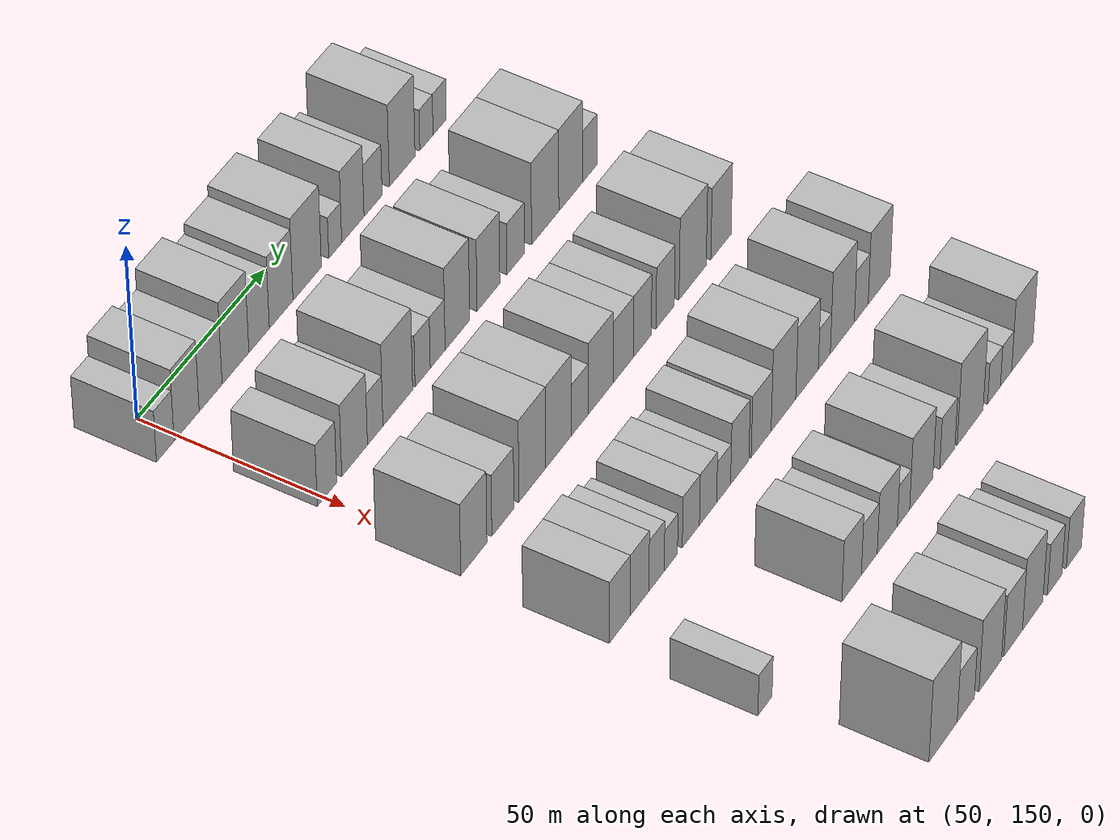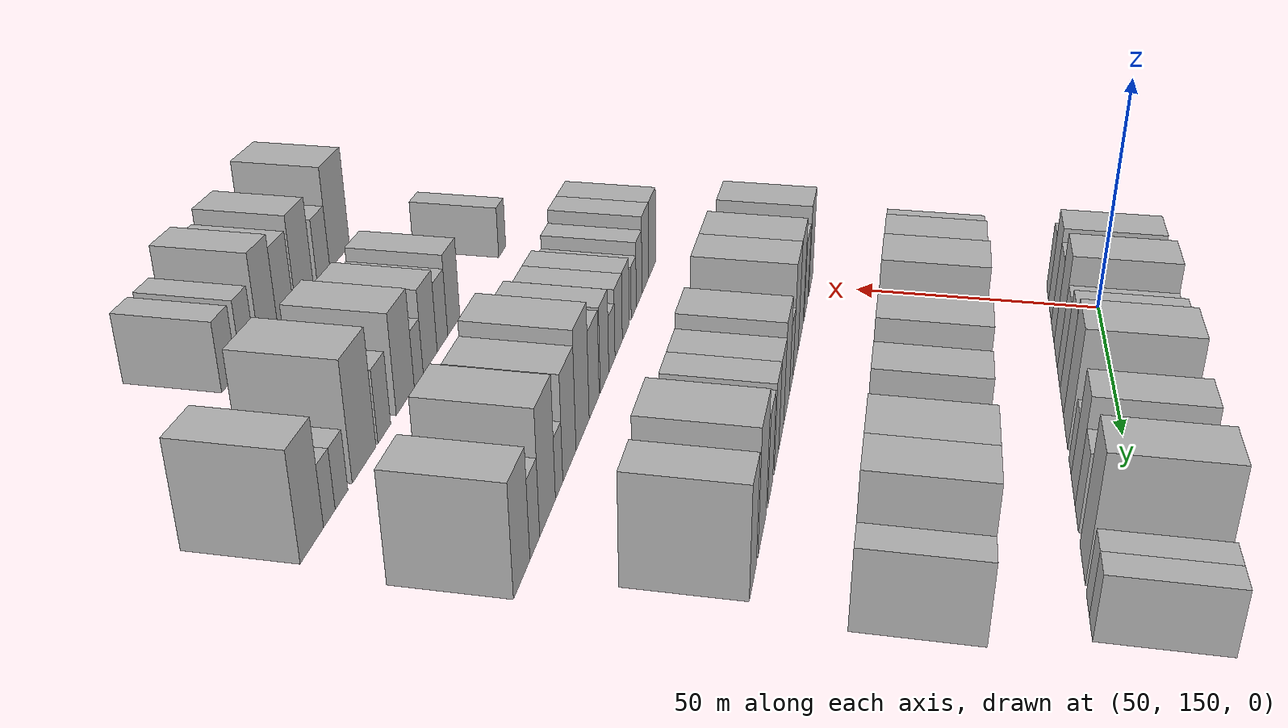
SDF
<sdf version="1.6">
 <world name="default">
  <model name="building_80">
   <static>1</static>
   <pose>50.0000 144.8148 0 0.000000 0.000000 0.000000</pose>
   <link name="link">
    <pose>0 0 7.50 0 0 0</pose>
    <collision name="collision"><geometry><box><size>20.0000 6.7819 15.0000</size></box></geometry></collision>
    <visual name="visual">
     <cast_shadows>0</cast_shadows>
     <geometry><box><size>20.0000 6.7819 15.0000</size></box></geometry>
     <material>
      <script>
       <uri>model://HANNAS_wall/materials/scripts</uri>
       <uri>model://HANNAS_wall/materials/textures</uri>
       <name>vrc/HANNAS_wall</name>
      </script>
     </material>
    </visual>
   </link>
  </model>
  <model name="building_81">
   <static>1</static>
   <pose>50.0000 153.0701 0 0.000000 0.000000 0.000000</pose>
   <link name="link">
    <pose>0 0 10.50 0 0 0</pose>
    <collision name="collision"><geometry><box><size>20.0000 9.7287 21.0000</size></box></geometry></collision>
    <visual name="visual">
     <cast_shadows>0</cast_shadows>
     <geometry><box><size>20.0000 9.7287 21.0000</size></box></geometry>
     <material>
      <script>
       <uri>model://HANNAS_wall/materials/scripts</uri>
       <uri>model://HANNAS_wall/materials/textures</uri>
       <name>vrc/HANNAS_wall</name>
      </script>
     </material>
    </visual>
   </link>
  </model>
  <model name="building_82">
   <static>1</static>
   <pose>50.0000 162.4113 0 0.000000 0.000000 0.000000</pose>
   <link name="link">
    <pose>0 0 9.00 0 0 0</pose>
    <collision name="collision"><geometry><box><size>20.0000 8.9536 18.0000</size></box></geometry></collision>
    <visual name="visual">
     <cast_shadows>0</cast_shadows>
     <geometry><box><size>20.0000 8.9536 18.0000</size></box></geometry>
     <material>
      <script>
       <uri>model://HANNAS_wall/materials/scripts</uri>
       <uri>model://HANNAS_wall/materials/textures</uri>
       <name>vrc/HANNAS_wall</name>
      </script>
     </material>
    </visual>
   </link>
  </model>
  <model name="building_83">
   <static>1</static>
   <pose>50.0000 172.1590 0 0.000000 0.000000 0.000000</pose>
   <link name="link">
    <pose>0 0 12.00 0 0 0</pose>
    <collision name="collision"><geometry><box><size>20.0000 10.5419 24.0000</size></box></geometry></collision>
    <visual name="visual">
     <cast_shadows>0</cast_shadows>
     <geometry><box><size>20.0000 10.5419 24.0000</size></box></geometry>
     <material>
      <script>
       <uri>model://HANNAS_wall/materials/scripts</uri>
       <uri>model://HANNAS_wall/materials/textures</uri>
       <name>vrc/HANNAS_wall</name>
      </script>
     </material>
    </visual>
   </link>
  </model>
  <model name="building_84">
   <static>1</static>
   <pose>50.0000 181.4920 0 0.000000 0.000000 0.000000</pose>
   <link name="link">
    <pose>0 0 9.00 0 0 0</pose>
    <collision name="collision"><geometry><box><size>20.0000 8.1241 18.0000</size></box></geometry></collision>
    <visual name="visual">
     <cast_shadows>0</cast_shadows>
     <geometry><box><size>20.0000 8.1241 18.0000</size></box></geometry>
     <material>
      <script>
       <uri>model://HANNAS_wall/materials/scripts</uri>
       <uri>model://HANNAS_wall/materials/textures</uri>
       <name>vrc/HANNAS_wall</name>
      </script>
     </material>
    </visual>
   </link>
  </model>
  <model name="building_85">
   <static>1</static>
   <pose>50.0000 190.2948 0 0.000000 0.000000 0.000000</pose>
   <link name="link">
    <pose>0 0 10.50 0 0 0</pose>
    <collision name="collision"><geometry><box><size>20.0000 9.4814 21.0000</size></box></geometry></collision>
    <visual name="visual">
     <cast_shadows>0</cast_shadows>
     <geometry><box><size>20.0000 9.4814 21.0000</size></box></geometry>
     <material>
      <script>
       <uri>model://HANNAS_wall/materials/scripts</uri>
       <uri>model://HANNAS_wall/materials/textures</uri>
       <name>vrc/HANNAS_wall</name>
      </script>
     </material>
    </visual>
   </link>
  </model>
  <model name="building_86">
   <static>1</static>
   <pose>50.0000 200.7579 0 0.000000 0.000000 0.000000</pose>
   <link name="link">
    <pose>0 0 12.00 0 0 0</pose>
    <collision name="collision"><geometry><box><size>20.0000 11.4448 24.0000</size></box></geometry></collision>
    <visual name="visual">
     <cast_shadows>0</cast_shadows>
     <geometry><box><size>20.0000 11.4448 24.0000</size></box></geometry>
     <material>
      <script>
       <uri>model://HANNAS_wall/materials/scripts</uri>
       <uri>model://HANNAS_wall/materials/textures</uri>
       <name>vrc/HANNAS_wall</name>
      </script>
     </material>
    </visual>
   </link>
  </model>
  <model name="building_87">
   <static>1</static>
   <pose>50.0000 212.1169 0 0.000000 0.000000 0.000000</pose>
   <link name="link">
    <pose>0 0 6.00 0 0 0</pose>
    <collision name="collision"><geometry><box><size>20.0000 5.2732 12.0000</size></box></geometry></collision>
    <visual name="visual">
     <cast_shadows>0</cast_shadows>
     <geometry><box><size>20.0000 5.2732 12.0000</size></box></geometry>
     <material>
      <script>
       <uri>model://HANNAS_wall/materials/scripts</uri>
       <uri>model://HANNAS_wall/materials/textures</uri>
       <name>vrc/HANNAS_wall</name>
      </script>
     </material>
    </visual>
   </link>
  </model>
  <model name="building_88">
   <static>1</static>
   <pose>50.0000 219.3202 0 0.000000 0.000000 0.000000</pose>
   <link name="link">
    <pose>0 0 10.50 0 0 0</pose>
    <collision name="collision"><geometry><box><size>20.0000 9.1335 21.0000</size></box></geometry></collision>
    <visual name="visual">
     <cast_shadows>0</cast_shadows>
     <geometry><box><size>20.0000 9.1335 21.0000</size></box></geometry>
     <material>
      <script>
       <uri>model://HANNAS_wall/materials/scripts</uri>
       <uri>model://HANNAS_wall/materials/textures</uri>
       <name>vrc/HANNAS_wall</name>
      </script>
     </material>
    </visual>
   </link>
  </model>
  <model name="building_89">
   <static>1</static>
   <pose>50.0000 227.6138 0 0.000000 0.000000 0.000000</pose>
   <link name="link">
    <pose>0 0 7.50 0 0 0</pose>
    <collision name="collision"><geometry><box><size>20.0000 7.4537 15.0000</size></box></geometry></collision>
    <visual name="visual">
     <cast_shadows>0</cast_shadows>
     <geometry><box><size>20.0000 7.4537 15.0000</size></box></geometry>
     <material>
      <script>
       <uri>model://HANNAS_wall/materials/scripts</uri>
       <uri>model://HANNAS_wall/materials/textures</uri>
       <name>vrc/HANNAS_wall</name>
      </script>
     </material>
    </visual>
   </link>
  </model>
  <model name="building_90">
   <static>1</static>
   <pose>50.0000 239.6920 0 0.000000 0.000000 0.000000</pose>
   <link name="link">
    <pose>0 0 12.00 0 0 0</pose>
    <collision name="collision"><geometry><box><size>20.0000 10.7027 24.0000</size></box></geometry></collision>
    <visual name="visual">
     <cast_shadows>0</cast_shadows>
     <geometry><box><size>20.0000 10.7027 24.0000</size></box></geometry>
     <material>
      <script>
       <uri>model://HANNAS_wall/materials/scripts</uri>
       <uri>model://HANNAS_wall/materials/textures</uri>
       <name>vrc/HANNAS_wall</name>
      </script>
     </material>
    </visual>
   </link>
  </model>
  <model name="building_91">
   <static>1</static>
   <pose>50.0000 249.8186 0 0.000000 0.000000 0.000000</pose>
   <link name="link">
    <pose>0 0 6.00 0 0 0</pose>
    <collision name="collision"><geometry><box><size>20.0000 5.5505 12.0000</size></box></geometry></collision>
    <visual name="visual">
     <cast_shadows>0</cast_shadows>
     <geometry><box><size>20.0000 5.5505 12.0000</size></box></geometry>
     <material>
      <script>
       <uri>model://HANNAS_wall/materials/scripts</uri>
       <uri>model://HANNAS_wall/materials/textures</uri>
       <name>vrc/HANNAS_wall</name>
      </script>
     </material>
    </visual>
   </link>
  </model>
  <model name="building_92">
   <static>1</static>
   <pose>50.0000 255.4020 0 0.000000 0.000000 0.000000</pose>
   <link name="link">
    <pose>0 0 6.00 0 0 0</pose>
    <collision name="collision"><geometry><box><size>20.0000 5.6163 12.0000</size></box></geometry></collision>
    <visual name="visual">
     <cast_shadows>0</cast_shadows>
     <geometry><box><size>20.0000 5.6163 12.0000</size></box></geometry>
     <material>
      <script>
       <uri>model://HANNAS_wall/materials/scripts</uri>
       <uri>model://HANNAS_wall/materials/textures</uri>
       <name>vrc/HANNAS_wall</name>
      </script>
     </material>
    </visual>
   </link>
  </model>
  <model name="building_211">
   <static>1</static>
   <pose>85.0000 150.9753 0 0.000000 0.000000 0.000000</pose>
   <link name="link">
    <pose>0 0 9.00 0 0 0</pose>
    <collision name="collision"><geometry><box><size>20.0000 7.6178 18.0000</size></box></geometry></collision>
    <visual name="visual">
     <cast_shadows>0</cast_shadows>
     <geometry><box><size>20.0000 7.6178 18.0000</size></box></geometry>
     <material>
      <script>
       <uri>model://HANNAS_wall/materials/scripts</uri>
       <uri>model://HANNAS_wall/materials/textures</uri>
       <name>vrc/HANNAS_wall</name>
      </script>
     </material>
    </visual>
   </link>
  </model>
  <model name="building_212">
   <static>1</static>
   <pose>85.0000 161.8814 0 0.000000 0.000000 0.000000</pose>
   <link name="link">
    <pose>0 0 10.50 0 0 0</pose>
    <collision name="collision"><geometry><box><size>20.0000 10.1944 21.0000</size></box></geometry></collision>
    <visual name="visual">
     <cast_shadows>0</cast_shadows>
     <geometry><box><size>20.0000 10.1944 21.0000</size></box></geometry>
     <material>
      <script>
       <uri>model://HANNAS_wall/materials/scripts</uri>
       <uri>model://HANNAS_wall/materials/textures</uri>
       <name>vrc/HANNAS_wall</name>
      </script>
     </material>
    </visual>
   </link>
  </model>
  <model name="building_213">
   <static>1</static>
   <pose>85.0000 170.0708 0 0.000000 0.000000 0.000000</pose>
   <link name="link">
    <pose>0 0 7.50 0 0 0</pose>
    <collision name="collision"><geometry><box><size>20.0000 6.1842 15.0000</size></box></geometry></collision>
    <visual name="visual">
     <cast_shadows>0</cast_shadows>
     <geometry><box><size>20.0000 6.1842 15.0000</size></box></geometry>
     <material>
      <script>
       <uri>model://HANNAS_wall/materials/scripts</uri>
       <uri>model://HANNAS_wall/materials/textures</uri>
       <name>vrc/HANNAS_wall</name>
      </script>
     </material>
    </visual>
   </link>
  </model>
  <model name="building_214">
   <static>1</static>
   <pose>85.0000 179.1400 0 0.000000 0.000000 0.000000</pose>
   <link name="link">
    <pose>0 0 12.00 0 0 0</pose>
    <collision name="collision"><geometry><box><size>20.0000 11.9542 24.0000</size></box></geometry></collision>
    <visual name="visual">
     <cast_shadows>0</cast_shadows>
     <geometry><box><size>20.0000 11.9542 24.0000</size></box></geometry>
     <material>
      <script>
       <uri>model://HANNAS_wall/materials/scripts</uri>
       <uri>model://HANNAS_wall/materials/textures</uri>
       <name>vrc/HANNAS_wall</name>
      </script>
     </material>
    </visual>
   </link>
  </model>
  <model name="building_215">
   <static>1</static>
   <pose>85.0000 189.1971 0 0.000000 0.000000 0.000000</pose>
   <link name="link">
    <pose>0 0 7.50 0 0 0</pose>
    <collision name="collision"><geometry><box><size>20.0000 6.1600 15.0000</size></box></geometry></collision>
    <visual name="visual">
     <cast_shadows>0</cast_shadows>
     <geometry><box><size>20.0000 6.1600 15.0000</size></box></geometry>
     <material>
      <script>
       <uri>model://HANNAS_wall/materials/scripts</uri>
       <uri>model://HANNAS_wall/materials/textures</uri>
       <name>vrc/HANNAS_wall</name>
      </script>
     </material>
    </visual>
   </link>
  </model>
  <model name="building_216">
   <static>1</static>
   <pose>85.0000 195.3230 0 0.000000 0.000000 0.000000</pose>
   <link name="link">
    <pose>0 0 7.50 0 0 0</pose>
    <collision name="collision"><geometry><box><size>20.0000 6.0917 15.0000</size></box></geometry></collision>
    <visual name="visual">
     <cast_shadows>0</cast_shadows>
     <geometry><box><size>20.0000 6.0917 15.0000</size></box></geometry>
     <material>
      <script>
       <uri>model://HANNAS_wall/materials/scripts</uri>
       <uri>model://HANNAS_wall/materials/textures</uri>
       <name>vrc/HANNAS_wall</name>
      </script>
     </material>
    </visual>
   </link>
  </model>
  <model name="building_217">
   <static>1</static>
   <pose>85.0000 203.4230 0 0.000000 0.000000 0.000000</pose>
   <link name="link">
    <pose>0 0 12.00 0 0 0</pose>
    <collision name="collision"><geometry><box><size>20.0000 10.1084 24.0000</size></box></geometry></collision>
    <visual name="visual">
     <cast_shadows>0</cast_shadows>
     <geometry><box><size>20.0000 10.1084 24.0000</size></box></geometry>
     <material>
      <script>
       <uri>model://HANNAS_wall/materials/scripts</uri>
       <uri>model://HANNAS_wall/materials/textures</uri>
       <name>vrc/HANNAS_wall</name>
      </script>
     </material>
    </visual>
   </link>
  </model>
  <model name="building_218">
   <static>1</static>
   <pose>85.0000 216.2097 0 0.000000 0.000000 0.000000</pose>
   <link name="link">
    <pose>0 0 10.50 0 0 0</pose>
    <collision name="collision"><geometry><box><size>20.0000 9.4649 21.0000</size></box></geometry></collision>
    <visual name="visual">
     <cast_shadows>0</cast_shadows>
     <geometry><box><size>20.0000 9.4649 21.0000</size></box></geometry>
     <material>
      <script>
       <uri>model://HANNAS_wall/materials/scripts</uri>
       <uri>model://HANNAS_wall/materials/textures</uri>
       <name>vrc/HANNAS_wall</name>
      </script>
     </material>
    </visual>
   </link>
  </model>
  <model name="building_219">
   <static>1</static>
   <pose>85.0000 227.5835 0 0.000000 0.000000 0.000000</pose>
   <link name="link">
    <pose>0 0 7.50 0 0 0</pose>
    <collision name="collision"><geometry><box><size>20.0000 7.2828 15.0000</size></box></geometry></collision>
    <visual name="visual">
     <cast_shadows>0</cast_shadows>
     <geometry><box><size>20.0000 7.2828 15.0000</size></box></geometry>
     <material>
      <script>
       <uri>model://HANNAS_wall/materials/scripts</uri>
       <uri>model://HANNAS_wall/materials/textures</uri>
       <name>vrc/HANNAS_wall</name>
      </script>
     </material>
    </visual>
   </link>
  </model>
  <model name="building_220">
   <static>1</static>
   <pose>85.0000 240.0047 0 0.000000 0.000000 0.000000</pose>
   <link name="link">
    <pose>0 0 12.00 0 0 0</pose>
    <collision name="collision"><geometry><box><size>20.0000 11.5596 24.0000</size></box></geometry></collision>
    <visual name="visual">
     <cast_shadows>0</cast_shadows>
     <geometry><box><size>20.0000 11.5596 24.0000</size></box></geometry>
     <material>
      <script>
       <uri>model://HANNAS_wall/materials/scripts</uri>
       <uri>model://HANNAS_wall/materials/textures</uri>
       <name>vrc/HANNAS_wall</name>
      </script>
     </material>
    </visual>
   </link>
  </model>
  <model name="building_221">
   <static>1</static>
   <pose>85.0000 250.8266 0 0.000000 0.000000 0.000000</pose>
   <link name="link">
    <pose>0 0 12.00 0 0 0</pose>
    <collision name="collision"><geometry><box><size>20.0000 10.0843 24.0000</size></box></geometry></collision>
    <visual name="visual">
     <cast_shadows>0</cast_shadows>
     <geometry><box><size>20.0000 10.0843 24.0000</size></box></geometry>
     <material>
      <script>
       <uri>model://HANNAS_wall/materials/scripts</uri>
       <uri>model://HANNAS_wall/materials/textures</uri>
       <name>vrc/HANNAS_wall</name>
      </script>
     </material>
    </visual>
   </link>
  </model>
  <model name="building_222">
   <static>1</static>
   <pose>85.0000 259.0029 0 0.000000 0.000000 0.000000</pose>
   <link name="link">
    <pose>0 0 7.50 0 0 0</pose>
    <collision name="collision"><geometry><box><size>20.0000 6.2681 15.0000</size></box></geometry></collision>
    <visual name="visual">
     <cast_shadows>0</cast_shadows>
     <geometry><box><size>20.0000 6.2681 15.0000</size></box></geometry>
     <material>
      <script>
       <uri>model://HANNAS_wall/materials/scripts</uri>
       <uri>model://HANNAS_wall/materials/textures</uri>
       <name>vrc/HANNAS_wall</name>
      </script>
     </material>
    </visual>
   </link>
  </model>
  <model name="building_334">
   <static>1</static>
   <pose>120.0000 150.3958 0 0.000000 0.000000 0.000000</pose>
   <link name="link">
    <pose>0 0 10.50 0 0 0</pose>
    <collision name="collision"><geometry><box><size>20.0000 10.4581 21.0000</size></box></geometry></collision>
    <visual name="visual">
     <cast_shadows>0</cast_shadows>
     <geometry><box><size>20.0000 10.4581 21.0000</size></box></geometry>
     <material>
      <script>
       <uri>model://HANNAS_wall/materials/scripts</uri>
       <uri>model://HANNAS_wall/materials/textures</uri>
       <name>vrc/HANNAS_wall</name>
      </script>
     </material>
    </visual>
   </link>
  </model>
  <model name="building_335">
   <static>1</static>
   <pose>120.0000 162.0709 0 0.000000 0.000000 0.000000</pose>
   <link name="link">
    <pose>0 0 9.00 0 0 0</pose>
    <collision name="collision"><geometry><box><size>20.0000 8.8922 18.0000</size></box></geometry></collision>
    <visual name="visual">
     <cast_shadows>0</cast_shadows>
     <geometry><box><size>20.0000 8.8922 18.0000</size></box></geometry>
     <material>
      <script>
       <uri>model://HANNAS_wall/materials/scripts</uri>
       <uri>model://HANNAS_wall/materials/textures</uri>
       <name>vrc/HANNAS_wall</name>
      </script>
     </material>
    </visual>
   </link>
  </model>
  <model name="building_336">
   <static>1</static>
   <pose>120.0000 174.0144 0 0.000000 0.000000 0.000000</pose>
   <link name="link">
    <pose>0 0 12.00 0 0 0</pose>
    <collision name="collision"><geometry><box><size>20.0000 10.9948 24.0000</size></box></geometry></collision>
    <visual name="visual">
     <cast_shadows>0</cast_shadows>
     <geometry><box><size>20.0000 10.9948 24.0000</size></box></geometry>
     <material>
      <script>
       <uri>model://HANNAS_wall/materials/scripts</uri>
       <uri>model://HANNAS_wall/materials/textures</uri>
       <name>vrc/HANNAS_wall</name>
      </script>
     </material>
    </visual>
   </link>
  </model>
  <model name="building_337">
   <static>1</static>
   <pose>120.0000 184.6923 0 0.000000 0.000000 0.000000</pose>
   <link name="link">
    <pose>0 0 12.00 0 0 0</pose>
    <collision name="collision"><geometry><box><size>20.0000 10.3611 24.0000</size></box></geometry></collision>
    <visual name="visual">
     <cast_shadows>0</cast_shadows>
     <geometry><box><size>20.0000 10.3611 24.0000</size></box></geometry>
     <material>
      <script>
       <uri>model://HANNAS_wall/materials/scripts</uri>
       <uri>model://HANNAS_wall/materials/textures</uri>
       <name>vrc/HANNAS_wall</name>
      </script>
     </material>
    </visual>
   </link>
  </model>
  <model name="building_338">
   <static>1</static>
   <pose>120.0000 193.4179 0 0.000000 0.000000 0.000000</pose>
   <link name="link">
    <pose>0 0 7.50 0 0 0</pose>
    <collision name="collision"><geometry><box><size>20.0000 7.0902 15.0000</size></box></geometry></collision>
    <visual name="visual">
     <cast_shadows>0</cast_shadows>
     <geometry><box><size>20.0000 7.0902 15.0000</size></box></geometry>
     <material>
      <script>
       <uri>model://HANNAS_wall/materials/scripts</uri>
       <uri>model://HANNAS_wall/materials/textures</uri>
       <name>vrc/HANNAS_wall</name>
      </script>
     </material>
    </visual>
   </link>
  </model>
  <model name="building_339">
   <static>1</static>
   <pose>120.0000 202.1685 0 0.000000 0.000000 0.000000</pose>
   <link name="link">
    <pose>0 0 10.50 0 0 0</pose>
    <collision name="collision"><geometry><box><size>20.0000 10.4110 21.0000</size></box></geometry></collision>
    <visual name="visual">
     <cast_shadows>0</cast_shadows>
     <geometry><box><size>20.0000 10.4110 21.0000</size></box></geometry>
     <material>
      <script>
       <uri>model://HANNAS_wall/materials/scripts</uri>
       <uri>model://HANNAS_wall/materials/textures</uri>
       <name>vrc/HANNAS_wall</name>
      </script>
     </material>
    </visual>
   </link>
  </model>
  <model name="building_340">
   <static>1</static>
   <pose>120.0000 211.6425 0 0.000000 0.000000 0.000000</pose>
   <link name="link">
    <pose>0 0 9.00 0 0 0</pose>
    <collision name="collision"><geometry><box><size>20.0000 8.5370 18.0000</size></box></geometry></collision>
    <visual name="visual">
     <cast_shadows>0</cast_shadows>
     <geometry><box><size>20.0000 8.5370 18.0000</size></box></geometry>
     <material>
      <script>
       <uri>model://HANNAS_wall/materials/scripts</uri>
       <uri>model://HANNAS_wall/materials/textures</uri>
       <name>vrc/HANNAS_wall</name>
      </script>
     </material>
    </visual>
   </link>
  </model>
  <model name="building_341">
   <static>1</static>
   <pose>120.0000 219.7172 0 0.000000 0.000000 0.000000</pose>
   <link name="link">
    <pose>0 0 9.00 0 0 0</pose>
    <collision name="collision"><geometry><box><size>20.0000 7.6124 18.0000</size></box></geometry></collision>
    <visual name="visual">
     <cast_shadows>0</cast_shadows>
     <geometry><box><size>20.0000 7.6124 18.0000</size></box></geometry>
     <material>
      <script>
       <uri>model://HANNAS_wall/materials/scripts</uri>
       <uri>model://HANNAS_wall/materials/textures</uri>
       <name>vrc/HANNAS_wall</name>
      </script>
     </material>
    </visual>
   </link>
  </model>
  <model name="building_342">
   <static>1</static>
   <pose>120.0000 229.4437 0 0.000000 0.000000 0.000000</pose>
   <link name="link">
    <pose>0 0 9.00 0 0 0</pose>
    <collision name="collision"><geometry><box><size>20.0000 7.8405 18.0000</size></box></geometry></collision>
    <visual name="visual">
     <cast_shadows>0</cast_shadows>
     <geometry><box><size>20.0000 7.8405 18.0000</size></box></geometry>
     <material>
      <script>
       <uri>model://HANNAS_wall/materials/scripts</uri>
       <uri>model://HANNAS_wall/materials/textures</uri>
       <name>vrc/HANNAS_wall</name>
      </script>
     </material>
    </visual>
   </link>
  </model>
  <model name="building_343">
   <static>1</static>
   <pose>120.0000 241.2269 0 0.000000 0.000000 0.000000</pose>
   <link name="link">
    <pose>0 0 12.00 0 0 0</pose>
    <collision name="collision"><geometry><box><size>20.0000 11.7260 24.0000</size></box></geometry></collision>
    <visual name="visual">
     <cast_shadows>0</cast_shadows>
     <geometry><box><size>20.0000 11.7260 24.0000</size></box></geometry>
     <material>
      <script>
       <uri>model://HANNAS_wall/materials/scripts</uri>
       <uri>model://HANNAS_wall/materials/textures</uri>
       <name>vrc/HANNAS_wall</name>
      </script>
     </material>
    </visual>
   </link>
  </model>
  <model name="building_344">
   <static>1</static>
   <pose>120.0000 253.5056 0 0.000000 0.000000 0.000000</pose>
   <link name="link">
    <pose>0 0 10.50 0 0 0</pose>
    <collision name="collision"><geometry><box><size>20.0000 8.8314 21.0000</size></box></geometry></collision>
    <visual name="visual">
     <cast_shadows>0</cast_shadows>
     <geometry><box><size>20.0000 8.8314 21.0000</size></box></geometry>
     <material>
      <script>
       <uri>model://HANNAS_wall/materials/scripts</uri>
       <uri>model://HANNAS_wall/materials/textures</uri>
       <name>vrc/HANNAS_wall</name>
      </script>
     </material>
    </visual>
   </link>
  </model>
  <model name="building_464">
   <static>1</static>
   <pose>155.0000 148.3871 0 0.000000 0.000000 0.000000</pose>
   <link name="link">
    <pose>0 0 9.00 0 0 0</pose>
    <collision name="collision"><geometry><box><size>20.0000 8.4430 18.0000</size></box></geometry></collision>
    <visual name="visual">
     <cast_shadows>0</cast_shadows>
     <geometry><box><size>20.0000 8.4430 18.0000</size></box></geometry>
     <material>
      <script>
       <uri>model://HANNAS_wall/materials/scripts</uri>
       <uri>model://HANNAS_wall/materials/textures</uri>
       <name>vrc/HANNAS_wall</name>
      </script>
     </material>
    </visual>
   </link>
  </model>
  <model name="building_465">
   <static>1</static>
   <pose>155.0000 156.4265 0 0.000000 0.000000 0.000000</pose>
   <link name="link">
    <pose>0 0 9.00 0 0 0</pose>
    <collision name="collision"><geometry><box><size>20.0000 7.6358 18.0000</size></box></geometry></collision>
    <visual name="visual">
     <cast_shadows>0</cast_shadows>
     <geometry><box><size>20.0000 7.6358 18.0000</size></box></geometry>
     <material>
      <script>
       <uri>model://HANNAS_wall/materials/scripts</uri>
       <uri>model://HANNAS_wall/materials/textures</uri>
       <name>vrc/HANNAS_wall</name>
      </script>
     </material>
    </visual>
   </link>
  </model>
  <model name="building_466">
   <static>1</static>
   <pose>155.0000 163.4088 0 0.000000 0.000000 0.000000</pose>
   <link name="link">
    <pose>0 0 7.50 0 0 0</pose>
    <collision name="collision"><geometry><box><size>20.0000 6.3288 15.0000</size></box></geometry></collision>
    <visual name="visual">
     <cast_shadows>0</cast_shadows>
     <geometry><box><size>20.0000 6.3288 15.0000</size></box></geometry>
     <material>
      <script>
       <uri>model://HANNAS_wall/materials/scripts</uri>
       <uri>model://HANNAS_wall/materials/textures</uri>
       <name>vrc/HANNAS_wall</name>
      </script>
     </material>
    </visual>
   </link>
  </model>
  <model name="building_467">
   <static>1</static>
   <pose>155.0000 169.3145 0 0.000000 0.000000 0.000000</pose>
   <link name="link">
    <pose>0 0 6.00 0 0 0</pose>
    <collision name="collision"><geometry><box><size>20.0000 5.4826 12.0000</size></box></geometry></collision>
    <visual name="visual">
     <cast_shadows>0</cast_shadows>
     <geometry><box><size>20.0000 5.4826 12.0000</size></box></geometry>
     <material>
      <script>
       <uri>model://HANNAS_wall/materials/scripts</uri>
       <uri>model://HANNAS_wall/materials/textures</uri>
       <name>vrc/HANNAS_wall</name>
      </script>
     </material>
    </visual>
   </link>
  </model>
  <model name="building_468">
   <static>1</static>
   <pose>155.0000 177.6183 0 0.000000 0.000000 0.000000</pose>
   <link name="link">
    <pose>0 0 7.50 0 0 0</pose>
    <collision name="collision"><geometry><box><size>20.0000 7.1250 15.0000</size></box></geometry></collision>
    <visual name="visual">
     <cast_shadows>0</cast_shadows>
     <geometry><box><size>20.0000 7.1250 15.0000</size></box></geometry>
     <material>
      <script>
       <uri>model://HANNAS_wall/materials/scripts</uri>
       <uri>model://HANNAS_wall/materials/textures</uri>
       <name>vrc/HANNAS_wall</name>
      </script>
     </material>
    </visual>
   </link>
  </model>
  <model name="building_469">
   <static>1</static>
   <pose>155.0000 184.7866 0 0.000000 0.000000 0.000000</pose>
   <link name="link">
    <pose>0 0 7.50 0 0 0</pose>
    <collision name="collision"><geometry><box><size>20.0000 7.2116 15.0000</size></box></geometry></collision>
    <visual name="visual">
     <cast_shadows>0</cast_shadows>
     <geometry><box><size>20.0000 7.2116 15.0000</size></box></geometry>
     <material>
      <script>
       <uri>model://HANNAS_wall/materials/scripts</uri>
       <uri>model://HANNAS_wall/materials/textures</uri>
       <name>vrc/HANNAS_wall</name>
      </script>
     </material>
    </visual>
   </link>
  </model>
  <model name="building_470">
   <static>1</static>
   <pose>155.0000 191.3282 0 0.000000 0.000000 0.000000</pose>
   <link name="link">
    <pose>0 0 6.00 0 0 0</pose>
    <collision name="collision"><geometry><box><size>20.0000 5.8715 12.0000</size></box></geometry></collision>
    <visual name="visual">
     <cast_shadows>0</cast_shadows>
     <geometry><box><size>20.0000 5.8715 12.0000</size></box></geometry>
     <material>
      <script>
       <uri>model://HANNAS_wall/materials/scripts</uri>
       <uri>model://HANNAS_wall/materials/textures</uri>
       <name>vrc/HANNAS_wall</name>
      </script>
     </material>
    </visual>
   </link>
  </model>
  <model name="building_471">
   <static>1</static>
   <pose>155.0000 198.1315 0 0.000000 0.000000 0.000000</pose>
   <link name="link">
    <pose>0 0 9.00 0 0 0</pose>
    <collision name="collision"><geometry><box><size>20.0000 7.7350 18.0000</size></box></geometry></collision>
    <visual name="visual">
     <cast_shadows>0</cast_shadows>
     <geometry><box><size>20.0000 7.7350 18.0000</size></box></geometry>
     <material>
      <script>
       <uri>model://HANNAS_wall/materials/scripts</uri>
       <uri>model://HANNAS_wall/materials/textures</uri>
       <name>vrc/HANNAS_wall</name>
      </script>
     </material>
    </visual>
   </link>
  </model>
  <model name="building_472">
   <static>1</static>
   <pose>155.0000 207.2544 0 0.000000 0.000000 0.000000</pose>
   <link name="link">
    <pose>0 0 9.00 0 0 0</pose>
    <collision name="collision"><geometry><box><size>20.0000 8.5109 18.0000</size></box></geometry></collision>
    <visual name="visual">
     <cast_shadows>0</cast_shadows>
     <geometry><box><size>20.0000 8.5109 18.0000</size></box></geometry>
     <material>
      <script>
       <uri>model://HANNAS_wall/materials/scripts</uri>
       <uri>model://HANNAS_wall/materials/textures</uri>
       <name>vrc/HANNAS_wall</name>
      </script>
     </material>
    </visual>
   </link>
  </model>
  <model name="building_473">
   <static>1</static>
   <pose>155.0000 216.7909 0 0.000000 0.000000 0.000000</pose>
   <link name="link">
    <pose>0 0 12.00 0 0 0</pose>
    <collision name="collision"><geometry><box><size>20.0000 10.5621 24.0000</size></box></geometry></collision>
    <visual name="visual">
     <cast_shadows>0</cast_shadows>
     <geometry><box><size>20.0000 10.5621 24.0000</size></box></geometry>
     <material>
      <script>
       <uri>model://HANNAS_wall/materials/scripts</uri>
       <uri>model://HANNAS_wall/materials/textures</uri>
       <name>vrc/HANNAS_wall</name>
      </script>
     </material>
    </visual>
   </link>
  </model>
  <model name="building_474">
   <static>1</static>
   <pose>155.0000 226.9825 0 0.000000 0.000000 0.000000</pose>
   <link name="link">
    <pose>0 0 10.50 0 0 0</pose>
    <collision name="collision"><geometry><box><size>20.0000 9.8209 21.0000</size></box></geometry></collision>
    <visual name="visual">
     <cast_shadows>0</cast_shadows>
     <geometry><box><size>20.0000 9.8209 21.0000</size></box></geometry>
     <material>
      <script>
       <uri>model://HANNAS_wall/materials/scripts</uri>
       <uri>model://HANNAS_wall/materials/textures</uri>
       <name>vrc/HANNAS_wall</name>
      </script>
     </material>
    </visual>
   </link>
  </model>
  <model name="building_475">
   <static>1</static>
   <pose>155.0000 234.5201 0 0.000000 0.000000 0.000000</pose>
   <link name="link">
    <pose>0 0 6.00 0 0 0</pose>
    <collision name="collision"><geometry><box><size>20.0000 5.2543 12.0000</size></box></geometry></collision>
    <visual name="visual">
     <cast_shadows>0</cast_shadows>
     <geometry><box><size>20.0000 5.2543 12.0000</size></box></geometry>
     <material>
      <script>
       <uri>model://HANNAS_wall/materials/scripts</uri>
       <uri>model://HANNAS_wall/materials/textures</uri>
       <name>vrc/HANNAS_wall</name>
      </script>
     </material>
    </visual>
   </link>
  </model>
  <model name="building_476">
   <static>1</static>
   <pose>155.0000 242.4186 0 0.000000 0.000000 0.000000</pose>
   <link name="link">
    <pose>0 0 12.00 0 0 0</pose>
    <collision name="collision"><geometry><box><size>20.0000 10.5427 24.0000</size></box></geometry></collision>
    <visual name="visual">
     <cast_shadows>0</cast_shadows>
     <geometry><box><size>20.0000 10.5427 24.0000</size></box></geometry>
     <material>
      <script>
       <uri>model://HANNAS_wall/materials/scripts</uri>
       <uri>model://HANNAS_wall/materials/textures</uri>
       <name>vrc/HANNAS_wall</name>
      </script>
     </material>
    </visual>
   </link>
  </model>
  <model name="building_477">
   <static>1</static>
   <pose>155.0000 250.7664 0 0.000000 0.000000 0.000000</pose>
   <link name="link">
    <pose>0 0 7.50 0 0 0</pose>
    <collision name="collision"><geometry><box><size>20.0000 6.1529 15.0000</size></box></geometry></collision>
    <visual name="visual">
     <cast_shadows>0</cast_shadows>
     <geometry><box><size>20.0000 6.1529 15.0000</size></box></geometry>
     <material>
      <script>
       <uri>model://HANNAS_wall/materials/scripts</uri>
       <uri>model://HANNAS_wall/materials/textures</uri>
       <name>vrc/HANNAS_wall</name>
      </script>
     </material>
    </visual>
   </link>
  </model>
  <model name="building_478">
   <static>1</static>
   <pose>155.0000 258.7242 0 0.000000 0.000000 0.000000</pose>
   <link name="link">
    <pose>0 0 10.50 0 0 0</pose>
    <collision name="collision"><geometry><box><size>20.0000 9.7626 21.0000</size></box></geometry></collision>
    <visual name="visual">
     <cast_shadows>0</cast_shadows>
     <geometry><box><size>20.0000 9.7626 21.0000</size></box></geometry>
     <material>
      <script>
       <uri>model://HANNAS_wall/materials/scripts</uri>
       <uri>model://HANNAS_wall/materials/textures</uri>
       <name>vrc/HANNAS_wall</name>
      </script>
     </material>
    </visual>
   </link>
  </model>
  <model name="building_598">
   <static>1</static>
   <pose>190.0000 144.9203 0 0.000000 0.000000 0.000000</pose>
   <link name="link">
    <pose>0 0 6.00 0 0 0</pose>
    <collision name="collision"><geometry><box><size>20.0000 5.8198 12.0000</size></box></geometry></collision>
    <visual name="visual">
     <cast_shadows>0</cast_shadows>
     <geometry><box><size>20.0000 5.8198 12.0000</size></box></geometry>
     <material>
      <script>
       <uri>model://HANNAS_wall/materials/scripts</uri>
       <uri>model://HANNAS_wall/materials/textures</uri>
       <name>vrc/HANNAS_wall</name>
      </script>
     </material>
    </visual>
   </link>
  </model>
  <model name="building_599">
   <static>1</static>
   <pose>190.0000 181.2211 0 0.000000 0.000000 0.000000</pose>
   <link name="link">
    <pose>0 0 9.00 0 0 0</pose>
    <collision name="collision"><geometry><box><size>20.0000 8.2606 18.0000</size></box></geometry></collision>
    <visual name="visual">
     <cast_shadows>0</cast_shadows>
     <geometry><box><size>20.0000 8.2606 18.0000</size></box></geometry>
     <material>
      <script>
       <uri>model://HANNAS_wall/materials/scripts</uri>
       <uri>model://HANNAS_wall/materials/textures</uri>
       <name>vrc/HANNAS_wall</name>
      </script>
     </material>
    </visual>
   </link>
  </model>
  <model name="building_600">
   <static>1</static>
   <pose>190.0000 188.7590 0 0.000000 0.000000 0.000000</pose>
   <link name="link">
    <pose>0 0 7.50 0 0 0</pose>
    <collision name="collision"><geometry><box><size>20.0000 6.8151 15.0000</size></box></geometry></collision>
    <visual name="visual">
     <cast_shadows>0</cast_shadows>
     <geometry><box><size>20.0000 6.8151 15.0000</size></box></geometry>
     <material>
      <script>
       <uri>model://HANNAS_wall/materials/scripts</uri>
       <uri>model://HANNAS_wall/materials/textures</uri>
       <name>vrc/HANNAS_wall</name>
      </script>
     </material>
    </visual>
   </link>
  </model>
  <model name="building_601">
   <static>1</static>
   <pose>190.0000 196.5057 0 0.000000 0.000000 0.000000</pose>
   <link name="link">
    <pose>0 0 9.00 0 0 0</pose>
    <collision name="collision"><geometry><box><size>20.0000 8.6783 18.0000</size></box></geometry></collision>
    <visual name="visual">
     <cast_shadows>0</cast_shadows>
     <geometry><box><size>20.0000 8.6783 18.0000</size></box></geometry>
     <material>
      <script>
       <uri>model://HANNAS_wall/materials/scripts</uri>
       <uri>model://HANNAS_wall/materials/textures</uri>
       <name>vrc/HANNAS_wall</name>
      </script>
     </material>
    </visual>
   </link>
  </model>
  <model name="building_602">
   <static>1</static>
   <pose>190.0000 203.5031 0 0.000000 0.000000 0.000000</pose>
   <link name="link">
    <pose>0 0 6.00 0 0 0</pose>
    <collision name="collision"><geometry><box><size>20.0000 5.3166 12.0000</size></box></geometry></collision>
    <visual name="visual">
     <cast_shadows>0</cast_shadows>
     <geometry><box><size>20.0000 5.3166 12.0000</size></box></geometry>
     <material>
      <script>
       <uri>model://HANNAS_wall/materials/scripts</uri>
       <uri>model://HANNAS_wall/materials/textures</uri>
       <name>vrc/HANNAS_wall</name>
      </script>
     </material>
    </visual>
   </link>
  </model>
  <model name="building_603">
   <static>1</static>
   <pose>190.0000 211.2351 0 0.000000 0.000000 0.000000</pose>
   <link name="link">
    <pose>0 0 10.50 0 0 0</pose>
    <collision name="collision"><geometry><box><size>20.0000 10.1474 21.0000</size></box></geometry></collision>
    <visual name="visual">
     <cast_shadows>0</cast_shadows>
     <geometry><box><size>20.0000 10.1474 21.0000</size></box></geometry>
     <material>
      <script>
       <uri>model://HANNAS_wall/materials/scripts</uri>
       <uri>model://HANNAS_wall/materials/textures</uri>
       <name>vrc/HANNAS_wall</name>
      </script>
     </material>
    </visual>
   </link>
  </model>
  <model name="building_604">
   <static>1</static>
   <pose>190.0000 222.6665 0 0.000000 0.000000 0.000000</pose>
   <link name="link">
    <pose>0 0 7.50 0 0 0</pose>
    <collision name="collision"><geometry><box><size>20.0000 6.7155 15.0000</size></box></geometry></collision>
    <visual name="visual">
     <cast_shadows>0</cast_shadows>
     <geometry><box><size>20.0000 6.7155 15.0000</size></box></geometry>
     <material>
      <script>
       <uri>model://HANNAS_wall/materials/scripts</uri>
       <uri>model://HANNAS_wall/materials/textures</uri>
       <name>vrc/HANNAS_wall</name>
      </script>
     </material>
    </visual>
   </link>
  </model>
  <model name="building_605">
   <static>1</static>
   <pose>190.0000 232.8023 0 0.000000 0.000000 0.000000</pose>
   <link name="link">
    <pose>0 0 12.00 0 0 0</pose>
    <collision name="collision"><geometry><box><size>20.0000 11.5562 24.0000</size></box></geometry></collision>
    <visual name="visual">
     <cast_shadows>0</cast_shadows>
     <geometry><box><size>20.0000 11.5562 24.0000</size></box></geometry>
     <material>
      <script>
       <uri>model://HANNAS_wall/materials/scripts</uri>
       <uri>model://HANNAS_wall/materials/textures</uri>
       <name>vrc/HANNAS_wall</name>
      </script>
     </material>
    </visual>
   </link>
  </model>
  <model name="building_606">
   <static>1</static>
   <pose>190.0000 243.4490 0 0.000000 0.000000 0.000000</pose>
   <link name="link">
    <pose>0 0 6.00 0 0 0</pose>
    <collision name="collision"><geometry><box><size>20.0000 5.7372 12.0000</size></box></geometry></collision>
    <visual name="visual">
     <cast_shadows>0</cast_shadows>
     <geometry><box><size>20.0000 5.7372 12.0000</size></box></geometry>
     <material>
      <script>
       <uri>model://HANNAS_wall/materials/scripts</uri>
       <uri>model://HANNAS_wall/materials/textures</uri>
       <name>vrc/HANNAS_wall</name>
      </script>
     </material>
    </visual>
   </link>
  </model>
  <model name="building_607">
   <static>1</static>
   <pose>190.0000 248.8525 0 0.000000 0.000000 0.000000</pose>
   <link name="link">
    <pose>0 0 6.00 0 0 0</pose>
    <collision name="collision"><geometry><box><size>20.0000 5.0699 12.0000</size></box></geometry></collision>
    <visual name="visual">
     <cast_shadows>0</cast_shadows>
     <geometry><box><size>20.0000 5.0699 12.0000</size></box></geometry>
     <material>
      <script>
       <uri>model://HANNAS_wall/materials/scripts</uri>
       <uri>model://HANNAS_wall/materials/textures</uri>
       <name>vrc/HANNAS_wall</name>
      </script>
     </material>
    </visual>
   </link>
  </model>
  <model name="building_608">
   <static>1</static>
   <pose>190.0000 256.2216 0 0.000000 0.000000 0.000000</pose>
   <link name="link">
    <pose>0 0 10.50 0 0 0</pose>
    <collision name="collision"><geometry><box><size>20.0000 9.6684 21.0000</size></box></geometry></collision>
    <visual name="visual">
     <cast_shadows>0</cast_shadows>
     <geometry><box><size>20.0000 9.6684 21.0000</size></box></geometry>
     <material>
      <script>
       <uri>model://HANNAS_wall/materials/scripts</uri>
       <uri>model://HANNAS_wall/materials/textures</uri>
       <name>vrc/HANNAS_wall</name>
      </script>
     </material>
    </visual>
   </link>
  </model>
  <model name="building_719">
   <static>1</static>
   <pose>225.0000 154.0456 0 0.000000 0.000000 0.000000</pose>
   <link name="link">
    <pose>0 0 12.00 0 0 0</pose>
    <collision name="collision"><geometry><box><size>20.0000 11.9733 24.0000</size></box></geometry></collision>
    <visual name="visual">
     <cast_shadows>0</cast_shadows>
     <geometry><box><size>20.0000 11.9733 24.0000</size></box></geometry>
     <material>
      <script>
       <uri>model://HANNAS_wall/materials/scripts</uri>
       <uri>model://HANNAS_wall/materials/textures</uri>
       <name>vrc/HANNAS_wall</name>
      </script>
     </material>
    </visual>
   </link>
  </model>
  <model name="building_720">
   <static>1</static>
   <pose>225.0000 163.6981 0 0.000000 0.000000 0.000000</pose>
   <link name="link">
    <pose>0 0 7.50 0 0 0</pose>
    <collision name="collision"><geometry><box><size>20.0000 7.3318 15.0000</size></box></geometry></collision>
    <visual name="visual">
     <cast_shadows>0</cast_shadows>
     <geometry><box><size>20.0000 7.3318 15.0000</size></box></geometry>
     <material>
      <script>
       <uri>model://HANNAS_wall/materials/scripts</uri>
       <uri>model://HANNAS_wall/materials/textures</uri>
       <name>vrc/HANNAS_wall</name>
      </script>
     </material>
    </visual>
   </link>
  </model>
  <model name="building_721">
   <static>1</static>
   <pose>225.0000 174.2147 0 0.000000 0.000000 0.000000</pose>
   <link name="link">
    <pose>0 0 10.50 0 0 0</pose>
    <collision name="collision"><geometry><box><size>20.0000 9.7014 21.0000</size></box></geometry></collision>
    <visual name="visual">
     <cast_shadows>0</cast_shadows>
     <geometry><box><size>20.0000 9.7014 21.0000</size></box></geometry>
     <material>
      <script>
       <uri>model://HANNAS_wall/materials/scripts</uri>
       <uri>model://HANNAS_wall/materials/textures</uri>
       <name>vrc/HANNAS_wall</name>
      </script>
     </material>
    </visual>
   </link>
  </model>
  <model name="building_722">
   <static>1</static>
   <pose>225.0000 184.1359 0 0.000000 0.000000 0.000000</pose>
   <link name="link">
    <pose>0 0 9.00 0 0 0</pose>
    <collision name="collision"><geometry><box><size>20.0000 8.1411 18.0000</size></box></geometry></collision>
    <visual name="visual">
     <cast_shadows>0</cast_shadows>
     <geometry><box><size>20.0000 8.1411 18.0000</size></box></geometry>
     <material>
      <script>
       <uri>model://HANNAS_wall/materials/scripts</uri>
       <uri>model://HANNAS_wall/materials/textures</uri>
       <name>vrc/HANNAS_wall</name>
      </script>
     </material>
    </visual>
   </link>
  </model>
  <model name="building_723">
   <static>1</static>
   <pose>225.0000 192.6719 0 0.000000 0.000000 0.000000</pose>
   <link name="link">
    <pose>0 0 10.50 0 0 0</pose>
    <collision name="collision"><geometry><box><size>20.0000 8.9308 21.0000</size></box></geometry></collision>
    <visual name="visual">
     <cast_shadows>0</cast_shadows>
     <geometry><box><size>20.0000 8.9308 21.0000</size></box></geometry>
     <material>
      <script>
       <uri>model://HANNAS_wall/materials/scripts</uri>
       <uri>model://HANNAS_wall/materials/textures</uri>
       <name>vrc/HANNAS_wall</name>
      </script>
     </material>
    </visual>
   </link>
  </model>
  <model name="building_724">
   <static>1</static>
   <pose>225.0000 202.3395 0 0.000000 0.000000 0.000000</pose>
   <link name="link">
    <pose>0 0 7.50 0 0 0</pose>
    <collision name="collision"><geometry><box><size>20.0000 6.4044 15.0000</size></box></geometry></collision>
    <visual name="visual">
     <cast_shadows>0</cast_shadows>
     <geometry><box><size>20.0000 6.4044 15.0000</size></box></geometry>
     <material>
      <script>
       <uri>model://HANNAS_wall/materials/scripts</uri>
       <uri>model://HANNAS_wall/materials/textures</uri>
       <name>vrc/HANNAS_wall</name>
      </script>
     </material>
    </visual>
   </link>
  </model>
  <model name="building_725">
   <static>1</static>
   <pose>225.0000 210.8980 0 0.000000 0.000000 0.000000</pose>
   <link name="link">
    <pose>0 0 7.50 0 0 0</pose>
    <collision name="collision"><geometry><box><size>20.0000 6.7126 15.0000</size></box></geometry></collision>
    <visual name="visual">
     <cast_shadows>0</cast_shadows>
     <geometry><box><size>20.0000 6.7126 15.0000</size></box></geometry>
     <material>
      <script>
       <uri>model://HANNAS_wall/materials/scripts</uri>
       <uri>model://HANNAS_wall/materials/textures</uri>
       <name>vrc/HANNAS_wall</name>
      </script>
     </material>
    </visual>
   </link>
  </model>
 </world>
</sdf>
